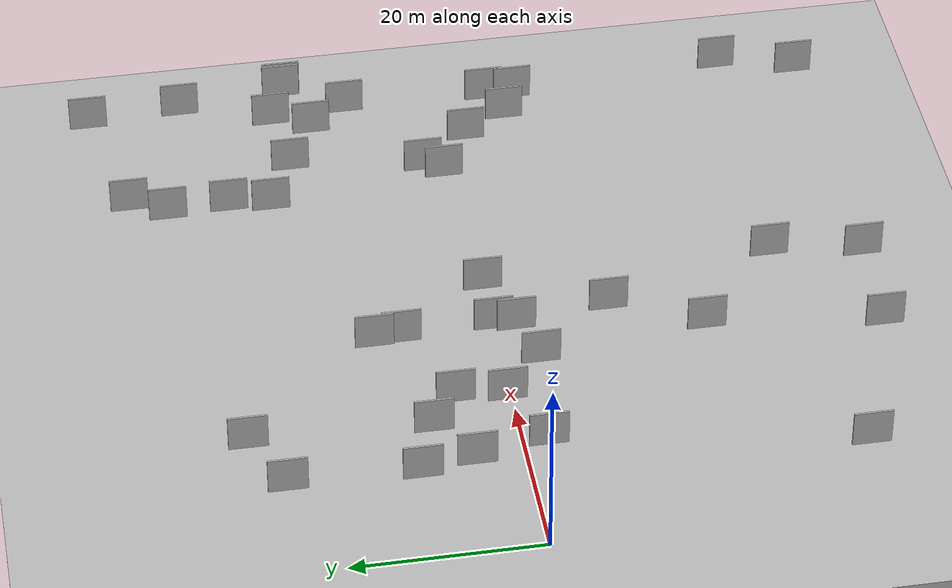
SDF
<?xml version="1.0" encoding="utf-8"?>

<sdf version="1.6">

   <world name="default">

      <gui fullscreen="0">

         <camera name="user_camera">

            <pose>-15 0 4.57585 0 0 0</pose>

            <view_controller>orbit</view_controller>

         </camera>

      </gui>

      <scene>

         <sky>

           <clouds>

             <speed>12</speed>

           </clouds>

         </sky>

         <ambient>0.4 0.4 0.4 1</ambient>

         <background>0.7 0.7 0.7 1</background>

         <shadows>1</shadows>

      </scene>

      <gravity>0 0 -9.8066</gravity>

      <magnetic_field>6e-06 2.3e-05 -4.2e-05</magnetic_field>

      <physics default="0" name="default_physics" type="ode">

         <ode>

            <solver>

               <type>quick</type>

               <iters>10</iters>

               <sor>1.0</sor>

               <use_dynamic_moi_rescaling>0</use_dynamic_moi_rescaling>

            </solver>

            <constraints>

               <cfm>0</cfm>

               <erp>0.2</erp>

               <contact_max_correcting_vel>100</contact_max_correcting_vel>

               <contact_surface_layer>0.001</contact_surface_layer>

            </constraints>

         </ode>

         <max_step_size>0.004</max_step_size>

         <real_time_factor>1</real_time_factor>

         <real_time_update_rate>250</real_time_update_rate>

      </physics>

      <light name="sun" type="directional">

         <cast_shadows>1</cast_shadows>

         <pose>0 0 10 0 0 0</pose>

         <diffuse>0.8 0.8 0.8 1</diffuse>

         <specular>0.2 0.2 0.2 1</specular>

         <attenuation>

            <range>1000</range>

            <constant>0.9</constant>

            <linear>0.01</linear>

            <quadratic>0.001</quadratic>

         </attenuation>

         <direction>-0.5 0.1 -0.9</direction>

      </light>

      <include>

         <name>ground_plane_1</name>

         <uri>model://HANNAS_ground_plane</uri>

         <pose>0 0 0  0 0 0</pose>

      </include>

      <include>

         <name>ground_plane_2</name>

         <uri>model://HANNAS_ground_plane</uri>

         <pose>100 0 0  0 0 0</pose>

      </include>

      <model name="HANNAS_wall_1">

         <static>1</static>

         <pose frame="">64.5799 -38.7247 5.0 0.000000 0.000000 1.570796</pose>

         <link name="link">

            <pose frame="">0 0 2.00 0 0 0</pose>

            <collision name="collision">

               <geometry>

                  <box>

                     <size>4.00 0.2 4.00</size>

                  </box>

               </geometry>

               <max_contacts>10</max_contacts>

               <surface>

                  <contact>

                     <ode/>

                  </contact>

                  <bounce/>

                  <friction>

                     <torsional>

                        <ode/>

                     </torsional>

                     <ode/>

                  </friction>

               </surface>

            </collision>

            <visual name="visual">

               <cast_shadows>0</cast_shadows>

               <geometry>

                  <box>

                     <size>4.00 0.2 4.00</size>

                  </box>

               </geometry>

               <material>

                  <script>

                     <uri>model://HANNAS_wall/materials/scripts</uri>

                     <uri>model://HANNAS_wall/materials/textures</uri>

                     <name>vrc/HANNAS_wall</name>

                  </script>

               </material>

            </visual>

            <self_collide>0</self_collide>

            <enable_wind>0</enable_wind>

            <kinematic>0</kinematic>

         </link>

      </model>

      <model name="HANNAS_wall_2">

         <static>1</static>

         <pose frame="">16.8913 6.6205 5.0 0.000000 0.000000 1.570796</pose>

         <link name="link">

            <pose frame="">0 0 2.00 0 0 0</pose>

            <collision name="collision">

               <geometry>

                  <box>

                     <size>4.00 0.2 4.00</size>

                  </box>

               </geometry>

               <max_contacts>10</max_contacts>

               <surface>

                  <contact>

                     <ode/>

                  </contact>

                  <bounce/>

                  <friction>

                     <torsional>

                        <ode/>

                     </torsional>

                     <ode/>

                  </friction>

               </surface>

            </collision>

            <visual name="visual">

               <cast_shadows>0</cast_shadows>

               <geometry>

                  <box>

                     <size>4.00 0.2 4.00</size>

                  </box>

               </geometry>

               <material>

                  <script>

                     <uri>model://HANNAS_wall/materials/scripts</uri>

                     <uri>model://HANNAS_wall/materials/textures</uri>

                     <name>vrc/HANNAS_wall</name>

                  </script>

               </material>

            </visual>

            <self_collide>0</self_collide>

            <enable_wind>0</enable_wind>

            <kinematic>0</kinematic>

         </link>

      </model>

      <model name="HANNAS_wall_3">

         <static>1</static>

         <pose frame="">52.6621 2.1144 5.0 0.000000 0.000000 1.570796</pose>

         <link name="link">

            <pose frame="">0 0 2.00 0 0 0</pose>

            <collision name="collision">

               <geometry>

                  <box>

                     <size>4.00 0.2 4.00</size>

                  </box>

               </geometry>

               <max_contacts>10</max_contacts>

               <surface>

                  <contact>

                     <ode/>

                  </contact>

                  <bounce/>

                  <friction>

                     <torsional>

                        <ode/>

                     </torsional>

                     <ode/>

                  </friction>

               </surface>

            </collision>

            <visual name="visual">

               <cast_shadows>0</cast_shadows>

               <geometry>

                  <box>

                     <size>4.00 0.2 4.00</size>

                  </box>

               </geometry>

               <material>

                  <script>

                     <uri>model://HANNAS_wall/materials/scripts</uri>

                     <uri>model://HANNAS_wall/materials/textures</uri>

                     <name>vrc/HANNAS_wall</name>

                  </script>

               </material>

            </visual>

            <self_collide>0</self_collide>

            <enable_wind>0</enable_wind>

            <kinematic>0</kinematic>

         </link>

      </model>

      <model name="HANNAS_wall_4">

         <static>1</static>

         <pose frame="">67.1704 38.8763 5.0 0.000000 0.000000 1.570796</pose>

         <link name="link">

            <pose frame="">0 0 2.00 0 0 0</pose>

            <collision name="collision">

               <geometry>

                  <box>

                     <size>4.00 0.2 4.00</size>

                  </box>

               </geometry>

               <max_contacts>10</max_contacts>

               <surface>

                  <contact>

                     <ode/>

                  </contact>

                  <bounce/>

                  <friction>

                     <torsional>

                        <ode/>

                     </torsional>

                     <ode/>

                  </friction>

               </surface>

            </collision>

            <visual name="visual">

               <cast_shadows>0</cast_shadows>

               <geometry>

                  <box>

                     <size>4.00 0.2 4.00</size>

                  </box>

               </geometry>

               <material>

                  <script>

                     <uri>model://HANNAS_wall/materials/scripts</uri>

                     <uri>model://HANNAS_wall/materials/textures</uri>

                     <name>vrc/HANNAS_wall</name>

                  </script>

               </material>

            </visual>

            <self_collide>0</self_collide>

            <enable_wind>0</enable_wind>

            <kinematic>0</kinematic>

         </link>

      </model>

      <model name="HANNAS_wall_5">

         <static>1</static>

         <pose frame="">56.4935 18.1802 5.0 0.000000 0.000000 1.570796</pose>

         <link name="link">

            <pose frame="">0 0 2.00 0 0 0</pose>

            <collision name="collision">

               <geometry>

                  <box>

                     <size>4.00 0.2 4.00</size>

                  </box>

               </geometry>

               <max_contacts>10</max_contacts>

               <surface>

                  <contact>

                     <ode/>

                  </contact>

                  <bounce/>

                  <friction>

                     <torsional>

                        <ode/>

                     </torsional>

                     <ode/>

                  </friction>

               </surface>

            </collision>

            <visual name="visual">

               <cast_shadows>0</cast_shadows>

               <geometry>

                  <box>

                     <size>4.00 0.2 4.00</size>

                  </box>

               </geometry>

               <material>

                  <script>

                     <uri>model://HANNAS_wall/materials/scripts</uri>

                     <uri>model://HANNAS_wall/materials/textures</uri>

                     <name>vrc/HANNAS_wall</name>

                  </script>

               </material>

            </visual>

            <self_collide>0</self_collide>

            <enable_wind>0</enable_wind>

            <kinematic>0</kinematic>

         </link>

      </model>

      <model name="HANNAS_wall_6">

         <static>1</static>

         <pose frame="">13.4779 27.9198 5.0 0.000000 0.000000 1.570796</pose>

         <link name="link">

            <pose frame="">0 0 2.00 0 0 0</pose>

            <collision name="collision">

               <geometry>

                  <box>

                     <size>4.00 0.2 4.00</size>

                  </box>

               </geometry>

               <max_contacts>10</max_contacts>

               <surface>

                  <contact>

                     <ode/>

                  </contact>

                  <bounce/>

                  <friction>

                     <torsional>

                        <ode/>

                     </torsional>

                     <ode/>

                  </friction>

               </surface>

            </collision>

            <visual name="visual">

               <cast_shadows>0</cast_shadows>

               <geometry>

                  <box>

                     <size>4.00 0.2 4.00</size>

                  </box>

               </geometry>

               <material>

                  <script>

                     <uri>model://HANNAS_wall/materials/scripts</uri>

                     <uri>model://HANNAS_wall/materials/textures</uri>

                     <name>vrc/HANNAS_wall</name>

                  </script>

               </material>

            </visual>

            <self_collide>0</self_collide>

            <enable_wind>0</enable_wind>

            <kinematic>0</kinematic>

         </link>

      </model>

      <model name="HANNAS_wall_7">

         <static>1</static>

         <pose frame="">6.4539 11.5407 5.0 0.000000 0.000000 1.570796</pose>

         <link name="link">

            <pose frame="">0 0 2.00 0 0 0</pose>

            <collision name="collision">

               <geometry>

                  <box>

                     <size>4.00 0.2 4.00</size>

                  </box>

               </geometry>

               <max_contacts>10</max_contacts>

               <surface>

                  <contact>

                     <ode/>

                  </contact>

                  <bounce/>

                  <friction>

                     <torsional>

                        <ode/>

                     </torsional>

                     <ode/>

                  </friction>

               </surface>

            </collision>

            <visual name="visual">

               <cast_shadows>0</cast_shadows>

               <geometry>

                  <box>

                     <size>4.00 0.2 4.00</size>

                  </box>

               </geometry>

               <material>

                  <script>

                     <uri>model://HANNAS_wall/materials/scripts</uri>

                     <uri>model://HANNAS_wall/materials/textures</uri>

                     <name>vrc/HANNAS_wall</name>

                  </script>

               </material>

            </visual>

            <self_collide>0</self_collide>

            <enable_wind>0</enable_wind>

            <kinematic>0</kinematic>

         </link>

      </model>

      <model name="HANNAS_wall_8">

         <static>1</static>

         <pose frame="">32.6061 -38.9345 5.0 0.000000 0.000000 1.570796</pose>

         <link name="link">

            <pose frame="">0 0 2.00 0 0 0</pose>

            <collision name="collision">

               <geometry>

                  <box>

                     <size>4.00 0.2 4.00</size>

                  </box>

               </geometry>

               <max_contacts>10</max_contacts>

               <surface>

                  <contact>

                     <ode/>

                  </contact>

                  <bounce/>

                  <friction>

                     <torsional>

                        <ode/>

                     </torsional>

                     <ode/>

                  </friction>

               </surface>

            </collision>

            <visual name="visual">

               <cast_shadows>0</cast_shadows>

               <geometry>

                  <box>

                     <size>4.00 0.2 4.00</size>

                  </box>

               </geometry>

               <material>

                  <script>

                     <uri>model://HANNAS_wall/materials/scripts</uri>

                     <uri>model://HANNAS_wall/materials/textures</uri>

                     <name>vrc/HANNAS_wall</name>

                  </script>

               </material>

            </visual>

            <self_collide>0</self_collide>

            <enable_wind>0</enable_wind>

            <kinematic>0</kinematic>

         </link>

      </model>

      <model name="HANNAS_wall_9">

         <static>1</static>

         <pose frame="">12.9186 9.4352 5.0 0.000000 0.000000 1.570796</pose>

         <link name="link">

            <pose frame="">0 0 2.00 0 0 0</pose>

            <collision name="collision">

               <geometry>

                  <box>

                     <size>4.00 0.2 4.00</size>

                  </box>

               </geometry>

               <max_contacts>10</max_contacts>

               <surface>

                  <contact>

                     <ode/>

                  </contact>

                  <bounce/>

                  <friction>

                     <torsional>

                        <ode/>

                     </torsional>

                     <ode/>

                  </friction>

               </surface>

            </collision>

            <visual name="visual">

               <cast_shadows>0</cast_shadows>

               <geometry>

                  <box>

                     <size>4.00 0.2 4.00</size>

                  </box>

               </geometry>

               <material>

                  <script>

                     <uri>model://HANNAS_wall/materials/scripts</uri>

                     <uri>model://HANNAS_wall/materials/textures</uri>

                     <name>vrc/HANNAS_wall</name>

                  </script>

               </material>

            </visual>

            <self_collide>0</self_collide>

            <enable_wind>0</enable_wind>

            <kinematic>0</kinematic>

         </link>

      </model>

      <model name="HANNAS_wall_10">

         <static>1</static>

         <pose frame="">65.5544 11.0873 5.0 0.000000 0.000000 1.570796</pose>

         <link name="link">

            <pose frame="">0 0 2.00 0 0 0</pose>

            <collision name="collision">

               <geometry>

                  <box>

                     <size>4.00 0.2 4.00</size>

                  </box>

               </geometry>

               <max_contacts>10</max_contacts>

               <surface>

                  <contact>

                     <ode/>

                  </contact>

                  <bounce/>

                  <friction>

                     <torsional>

                        <ode/>

                     </torsional>

                     <ode/>

                  </friction>

               </surface>

            </collision>

            <visual name="visual">

               <cast_shadows>0</cast_shadows>

               <geometry>

                  <box>

                     <size>4.00 0.2 4.00</size>

                  </box>

               </geometry>

               <material>

                  <script>

                     <uri>model://HANNAS_wall/materials/scripts</uri>

                     <uri>model://HANNAS_wall/materials/textures</uri>

                     <name>vrc/HANNAS_wall</name>

                  </script>

               </material>

            </visual>

            <self_collide>0</self_collide>

            <enable_wind>0</enable_wind>

            <kinematic>0</kinematic>

         </link>

      </model>

      <model name="HANNAS_wall_11">

         <static>1</static>

         <pose frame="">64.6356 19.2631 5.0 0.000000 0.000000 1.570796</pose>

         <link name="link">

            <pose frame="">0 0 2.00 0 0 0</pose>

            <collision name="collision">

               <geometry>

                  <box>

                     <size>4.00 0.2 4.00</size>

                  </box>

               </geometry>

               <max_contacts>10</max_contacts>

               <surface>

                  <contact>

                     <ode/>

                  </contact>

                  <bounce/>

                  <friction>

                     <torsional>

                        <ode/>

                     </torsional>

                     <ode/>

                  </friction>

               </surface>

            </collision>

            <visual name="visual">

               <cast_shadows>0</cast_shadows>

               <geometry>

                  <box>

                     <size>4.00 0.2 4.00</size>

                  </box>

               </geometry>

               <material>

                  <script>

                     <uri>model://HANNAS_wall/materials/scripts</uri>

                     <uri>model://HANNAS_wall/materials/textures</uri>

                     <name>vrc/HANNAS_wall</name>

                  </script>

               </material>

            </visual>

            <self_collide>0</self_collide>

            <enable_wind>0</enable_wind>

            <kinematic>0</kinematic>

         </link>

      </model>

      <model name="HANNAS_wall_12">

         <static>1</static>

         <pose frame="">28.3698 -11.0868 5.0 0.000000 0.000000 1.570796</pose>

         <link name="link">

            <pose frame="">0 0 2.00 0 0 0</pose>

            <collision name="collision">

               <geometry>

                  <box>

                     <size>4.00 0.2 4.00</size>

                  </box>

               </geometry>

               <max_contacts>10</max_contacts>

               <surface>

                  <contact>

                     <ode/>

                  </contact>

                  <bounce/>

                  <friction>

                     <torsional>

                        <ode/>

                     </torsional>

                     <ode/>

                  </friction>

               </surface>

            </collision>

            <visual name="visual">

               <cast_shadows>0</cast_shadows>

               <geometry>

                  <box>

                     <size>4.00 0.2 4.00</size>

                  </box>

               </geometry>

               <material>

                  <script>

                     <uri>model://HANNAS_wall/materials/scripts</uri>

                     <uri>model://HANNAS_wall/materials/textures</uri>

                     <name>vrc/HANNAS_wall</name>

                  </script>

               </material>

            </visual>

            <self_collide>0</self_collide>

            <enable_wind>0</enable_wind>

            <kinematic>0</kinematic>

         </link>

      </model>

      <model name="HANNAS_wall_13">

         <static>1</static>

         <pose frame="">65.0862 -7.3641 5.0 0.000000 0.000000 1.570796</pose>

         <link name="link">

            <pose frame="">0 0 2.00 0 0 0</pose>

            <collision name="collision">

               <geometry>

                  <box>

                     <size>4.00 0.2 4.00</size>

                  </box>

               </geometry>

               <max_contacts>10</max_contacts>

               <surface>

                  <contact>

                     <ode/>

                  </contact>

                  <bounce/>

                  <friction>

                     <torsional>

                        <ode/>

                     </torsional>

                     <ode/>

                  </friction>

               </surface>

            </collision>

            <visual name="visual">

               <cast_shadows>0</cast_shadows>

               <geometry>

                  <box>

                     <size>4.00 0.2 4.00</size>

                  </box>

               </geometry>

               <material>

                  <script>

                     <uri>model://HANNAS_wall/materials/scripts</uri>

                     <uri>model://HANNAS_wall/materials/textures</uri>

                     <name>vrc/HANNAS_wall</name>

                  </script>

               </material>

            </visual>

            <self_collide>0</self_collide>

            <enable_wind>0</enable_wind>

            <kinematic>0</kinematic>

         </link>

      </model>

      <model name="HANNAS_wall_14">

         <static>1</static>

         <pose frame="">4.0782 -32.9591 5.0 0.000000 0.000000 1.570796</pose>

         <link name="link">

            <pose frame="">0 0 2.00 0 0 0</pose>

            <collision name="collision">

               <geometry>

                  <box>

                     <size>4.00 0.2 4.00</size>

                  </box>

               </geometry>

               <max_contacts>10</max_contacts>

               <surface>

                  <contact>

                     <ode/>

                  </contact>

                  <bounce/>

                  <friction>

                     <torsional>

                        <ode/>

                     </torsional>

                     <ode/>

                  </friction>

               </surface>

            </collision>

            <visual name="visual">

               <cast_shadows>0</cast_shadows>

               <geometry>

                  <box>

                     <size>4.00 0.2 4.00</size>

                  </box>

               </geometry>

               <material>

                  <script>

                     <uri>model://HANNAS_wall/materials/scripts</uri>

                     <uri>model://HANNAS_wall/materials/textures</uri>

                     <name>vrc/HANNAS_wall</name>

                  </script>

               </material>

            </visual>

            <self_collide>0</self_collide>

            <enable_wind>0</enable_wind>

            <kinematic>0</kinematic>

         </link>

      </model>

      <model name="HANNAS_wall_15">

         <static>1</static>

         <pose frame="">50.2954 31.9529 5.0 0.000000 0.000000 1.570796</pose>

         <link name="link">

            <pose frame="">0 0 2.00 0 0 0</pose>

            <collision name="collision">

               <geometry>

                  <box>

                     <size>4.00 0.2 4.00</size>

                  </box>

               </geometry>

               <max_contacts>10</max_contacts>

               <surface>

                  <contact>

                     <ode/>

                  </contact>

                  <bounce/>

                  <friction>

                     <torsional>

                        <ode/>

                     </torsional>

                     <ode/>

                  </friction>

               </surface>

            </collision>

            <visual name="visual">

               <cast_shadows>0</cast_shadows>

               <geometry>

                  <box>

                     <size>4.00 0.2 4.00</size>

                  </box>

               </geometry>

               <material>

                  <script>

                     <uri>model://HANNAS_wall/materials/scripts</uri>

                     <uri>model://HANNAS_wall/materials/textures</uri>

                     <name>vrc/HANNAS_wall</name>

                  </script>

               </material>

            </visual>

            <self_collide>0</self_collide>

            <enable_wind>0</enable_wind>

            <kinematic>0</kinematic>

         </link>

      </model>

      <model name="HANNAS_wall_16">

         <static>1</static>

         <pose frame="">58.6051 -1.1972 5.0 0.000000 0.000000 1.570796</pose>

         <link name="link">

            <pose frame="">0 0 2.00 0 0 0</pose>

            <collision name="collision">

               <geometry>

                  <box>

                     <size>4.00 0.2 4.00</size>

                  </box>

               </geometry>

               <max_contacts>10</max_contacts>

               <surface>

                  <contact>

                     <ode/>

                  </contact>

                  <bounce/>

                  <friction>

                     <torsional>

                        <ode/>

                     </torsional>

                     <ode/>

                  </friction>

               </surface>

            </collision>

            <visual name="visual">

               <cast_shadows>0</cast_shadows>

               <geometry>

                  <box>

                     <size>4.00 0.2 4.00</size>

                  </box>

               </geometry>

               <material>

                  <script>

                     <uri>model://HANNAS_wall/materials/scripts</uri>

                     <uri>model://HANNAS_wall/materials/textures</uri>

                     <name>vrc/HANNAS_wall</name>

                  </script>

               </material>

            </visual>

            <self_collide>0</self_collide>

            <enable_wind>0</enable_wind>

            <kinematic>0</kinematic>

         </link>

      </model>

      <model name="HANNAS_wall_17">

         <static>1</static>

         <pose frame="">21.4174 -2.8317 5.0 0.000000 0.000000 1.570796</pose>

         <link name="link">

            <pose frame="">0 0 2.00 0 0 0</pose>

            <collision name="collision">

               <geometry>

                  <box>

                     <size>4.00 0.2 4.00</size>

                  </box>

               </geometry>

               <max_contacts>10</max_contacts>

               <surface>

                  <contact>

                     <ode/>

                  </contact>

                  <bounce/>

                  <friction>

                     <torsional>

                        <ode/>

                     </torsional>

                     <ode/>

                  </friction>

               </surface>

            </collision>

            <visual name="visual">

               <cast_shadows>0</cast_shadows>

               <geometry>

                  <box>

                     <size>4.00 0.2 4.00</size>

                  </box>

               </geometry>

               <material>

                  <script>

                     <uri>model://HANNAS_wall/materials/scripts</uri>

                     <uri>model://HANNAS_wall/materials/textures</uri>

                     <name>vrc/HANNAS_wall</name>

                  </script>

               </material>

            </visual>

            <self_collide>0</self_collide>

            <enable_wind>0</enable_wind>

            <kinematic>0</kinematic>

         </link>

      </model>

      <model name="HANNAS_wall_18">

         <static>1</static>

         <pose frame="">50.1022 21.0409 5.0 0.000000 0.000000 1.570796</pose>

         <link name="link">

            <pose frame="">0 0 2.00 0 0 0</pose>

            <collision name="collision">

               <geometry>

                  <box>

                     <size>4.00 0.2 4.00</size>

                  </box>

               </geometry>

               <max_contacts>10</max_contacts>

               <surface>

                  <contact>

                     <ode/>

                  </contact>

                  <bounce/>

                  <friction>

                     <torsional>

                        <ode/>

                     </torsional>

                     <ode/>

                  </friction>

               </surface>

            </collision>

            <visual name="visual">

               <cast_shadows>0</cast_shadows>

               <geometry>

                  <box>

                     <size>4.00 0.2 4.00</size>

                  </box>

               </geometry>

               <material>

                  <script>

                     <uri>model://HANNAS_wall/materials/scripts</uri>

                     <uri>model://HANNAS_wall/materials/textures</uri>

                     <name>vrc/HANNAS_wall</name>

                  </script>

               </material>

            </visual>

            <self_collide>0</self_collide>

            <enable_wind>0</enable_wind>

            <kinematic>0</kinematic>

         </link>

      </model>

      <model name="HANNAS_wall_19">

         <static>1</static>

         <pose frame="">69.4346 17.5841 5.0 0.000000 0.000000 1.570796</pose>

         <link name="link">

            <pose frame="">0 0 2.00 0 0 0</pose>

            <collision name="collision">

               <geometry>

                  <box>

                     <size>4.00 0.2 4.00</size>

                  </box>

               </geometry>

               <max_contacts>10</max_contacts>

               <surface>

                  <contact>

                     <ode/>

                  </contact>

                  <bounce/>

                  <friction>

                     <torsional>

                        <ode/>

                     </torsional>

                     <ode/>

                  </friction>

               </surface>

            </collision>

            <visual name="visual">

               <cast_shadows>0</cast_shadows>

               <geometry>

                  <box>

                     <size>4.00 0.2 4.00</size>

                  </box>

               </geometry>

               <material>

                  <script>

                     <uri>model://HANNAS_wall/materials/scripts</uri>

                     <uri>model://HANNAS_wall/materials/textures</uri>

                     <name>vrc/HANNAS_wall</name>

                  </script>

               </material>

            </visual>

            <self_collide>0</self_collide>

            <enable_wind>0</enable_wind>

            <kinematic>0</kinematic>

         </link>

      </model>

      <model name="HANNAS_wall_20">

         <static>1</static>

         <pose frame="">33.6173 1.1093 5.0 0.000000 0.000000 1.570796</pose>

         <link name="link">

            <pose frame="">0 0 2.00 0 0 0</pose>

            <collision name="collision">

               <geometry>

                  <box>

                     <size>4.00 0.2 4.00</size>

                  </box>

               </geometry>

               <max_contacts>10</max_contacts>

               <surface>

                  <contact>

                     <ode/>

                  </contact>

                  <bounce/>

                  <friction>

                     <torsional>

                        <ode/>

                     </torsional>

                     <ode/>

                  </friction>

               </surface>

            </collision>

            <visual name="visual">

               <cast_shadows>0</cast_shadows>

               <geometry>

                  <box>

                     <size>4.00 0.2 4.00</size>

                  </box>

               </geometry>

               <material>

                  <script>

                     <uri>model://HANNAS_wall/materials/scripts</uri>

                     <uri>model://HANNAS_wall/materials/textures</uri>

                     <name>vrc/HANNAS_wall</name>

                  </script>

               </material>

            </visual>

            <self_collide>0</self_collide>

            <enable_wind>0</enable_wind>

            <kinematic>0</kinematic>

         </link>

      </model>

      <model name="HANNAS_wall_21">

         <static>1</static>

         <pose frame="">26.7992 -1.2339 5.0 0.000000 0.000000 1.570796</pose>

         <link name="link">

            <pose frame="">0 0 2.00 0 0 0</pose>

            <collision name="collision">

               <geometry>

                  <box>

                     <size>4.00 0.2 4.00</size>

                  </box>

               </geometry>

               <max_contacts>10</max_contacts>

               <surface>

                  <contact>

                     <ode/>

                  </contact>

                  <bounce/>

                  <friction>

                     <torsional>

                        <ode/>

                     </torsional>

                     <ode/>

                  </friction>

               </surface>

            </collision>

            <visual name="visual">

               <cast_shadows>0</cast_shadows>

               <geometry>

                  <box>

                     <size>4.00 0.2 4.00</size>

                  </box>

               </geometry>

               <material>

                  <script>

                     <uri>model://HANNAS_wall/materials/scripts</uri>

                     <uri>model://HANNAS_wall/materials/textures</uri>

                     <name>vrc/HANNAS_wall</name>

                  </script>

               </material>

            </visual>

            <self_collide>0</self_collide>

            <enable_wind>0</enable_wind>

            <kinematic>0</kinematic>

         </link>

      </model>

      <model name="HANNAS_wall_22">

         <static>1</static>

         <pose frame="">50.6519 25.4522 5.0 0.000000 0.000000 1.570796</pose>

         <link name="link">

            <pose frame="">0 0 2.00 0 0 0</pose>

            <collision name="collision">

               <geometry>

                  <box>

                     <size>4.00 0.2 4.00</size>

                  </box>

               </geometry>

               <max_contacts>10</max_contacts>

               <surface>

                  <contact>

                     <ode/>

                  </contact>

                  <bounce/>

                  <friction>

                     <torsional>

                        <ode/>

                     </torsional>

                     <ode/>

                  </friction>

               </surface>

            </collision>

            <visual name="visual">

               <cast_shadows>0</cast_shadows>

               <geometry>

                  <box>

                     <size>4.00 0.2 4.00</size>

                  </box>

               </geometry>

               <material>

                  <script>

                     <uri>model://HANNAS_wall/materials/scripts</uri>

                     <uri>model://HANNAS_wall/materials/textures</uri>

                     <name>vrc/HANNAS_wall</name>

                  </script>

               </material>

            </visual>

            <self_collide>0</self_collide>

            <enable_wind>0</enable_wind>

            <kinematic>0</kinematic>

         </link>

      </model>

      <model name="HANNAS_wall_23">

         <static>1</static>

         <pose frame="">52.4099 35.8447 5.0 0.000000 0.000000 1.570796</pose>

         <link name="link">

            <pose frame="">0 0 2.00 0 0 0</pose>

            <collision name="collision">

               <geometry>

                  <box>

                     <size>4.00 0.2 4.00</size>

                  </box>

               </geometry>

               <max_contacts>10</max_contacts>

               <surface>

                  <contact>

                     <ode/>

                  </contact>

                  <bounce/>

                  <friction>

                     <torsional>

                        <ode/>

                     </torsional>

                     <ode/>

                  </friction>

               </surface>

            </collision>

            <visual name="visual">

               <cast_shadows>0</cast_shadows>

               <geometry>

                  <box>

                     <size>4.00 0.2 4.00</size>

                  </box>

               </geometry>

               <material>

                  <script>

                     <uri>model://HANNAS_wall/materials/scripts</uri>

                     <uri>model://HANNAS_wall/materials/textures</uri>

                     <name>vrc/HANNAS_wall</name>

                  </script>

               </material>

            </visual>

            <self_collide>0</self_collide>

            <enable_wind>0</enable_wind>

            <kinematic>0</kinematic>

         </link>

      </model>

      <model name="HANNAS_wall_24">

         <static>1</static>

         <pose frame="">26.5206 13.4300 5.0 0.000000 0.000000 1.570796</pose>

         <link name="link">

            <pose frame="">0 0 2.00 0 0 0</pose>

            <collision name="collision">

               <geometry>

                  <box>

                     <size>4.00 0.2 4.00</size>

                  </box>

               </geometry>

               <max_contacts>10</max_contacts>

               <surface>

                  <contact>

                     <ode/>

                  </contact>

                  <bounce/>

                  <friction>

                     <torsional>

                        <ode/>

                     </torsional>

                     <ode/>

                  </friction>

               </surface>

            </collision>

            <visual name="visual">

               <cast_shadows>0</cast_shadows>

               <geometry>

                  <box>

                     <size>4.00 0.2 4.00</size>

                  </box>

               </geometry>

               <material>

                  <script>

                     <uri>model://HANNAS_wall/materials/scripts</uri>

                     <uri>model://HANNAS_wall/materials/textures</uri>

                     <name>vrc/HANNAS_wall</name>

                  </script>

               </material>

            </visual>

            <self_collide>0</self_collide>

            <enable_wind>0</enable_wind>

            <kinematic>0</kinematic>

         </link>

      </model>

      <model name="HANNAS_wall_25">

         <static>1</static>

         <pose frame="">62.5072 15.1461 5.0 0.000000 0.000000 1.570796</pose>

         <link name="link">

            <pose frame="">0 0 2.00 0 0 0</pose>

            <collision name="collision">

               <geometry>

                  <box>

                     <size>4.00 0.2 4.00</size>

                  </box>

               </geometry>

               <max_contacts>10</max_contacts>

               <surface>

                  <contact>

                     <ode/>

                  </contact>

                  <bounce/>

                  <friction>

                     <torsional>

                        <ode/>

                     </torsional>

                     <ode/>

                  </friction>

               </surface>

            </collision>

            <visual name="visual">

               <cast_shadows>0</cast_shadows>

               <geometry>

                  <box>

                     <size>4.00 0.2 4.00</size>

                  </box>

               </geometry>

               <material>

                  <script>

                     <uri>model://HANNAS_wall/materials/scripts</uri>

                     <uri>model://HANNAS_wall/materials/textures</uri>

                     <name>vrc/HANNAS_wall</name>

                  </script>

               </material>

            </visual>

            <self_collide>0</self_collide>

            <enable_wind>0</enable_wind>

            <kinematic>0</kinematic>

         </link>

      </model>

      <model name="HANNAS_wall_26">

         <static>1</static>

         <pose frame="">54.1058 4.1856 5.0 0.000000 0.000000 1.570796</pose>

         <link name="link">

            <pose frame="">0 0 2.00 0 0 0</pose>

            <collision name="collision">

               <geometry>

                  <box>

                     <size>4.00 0.2 4.00</size>

                  </box>

               </geometry>

               <max_contacts>10</max_contacts>

               <surface>

                  <contact>

                     <ode/>

                  </contact>

                  <bounce/>

                  <friction>

                     <torsional>

                        <ode/>

                     </torsional>

                     <ode/>

                  </friction>

               </surface>

            </collision>

            <visual name="visual">

               <cast_shadows>0</cast_shadows>

               <geometry>

                  <box>

                     <size>4.00 0.2 4.00</size>

                  </box>

               </geometry>

               <material>

                  <script>

                     <uri>model://HANNAS_wall/materials/scripts</uri>

                     <uri>model://HANNAS_wall/materials/textures</uri>

                     <name>vrc/HANNAS_wall</name>

                  </script>

               </material>

            </visual>

            <self_collide>0</self_collide>

            <enable_wind>0</enable_wind>

            <kinematic>0</kinematic>

         </link>

      </model>

      <model name="HANNAS_wall_27">

         <static>1</static>

         <pose frame="">7.5233 5.9950 5.0 0.000000 0.000000 1.570796</pose>

         <link name="link">

            <pose frame="">0 0 2.00 0 0 0</pose>

            <collision name="collision">

               <geometry>

                  <box>

                     <size>4.00 0.2 4.00</size>

                  </box>

               </geometry>

               <max_contacts>10</max_contacts>

               <surface>

                  <contact>

                     <ode/>

                  </contact>

                  <bounce/>

                  <friction>

                     <torsional>

                        <ode/>

                     </torsional>

                     <ode/>

                  </friction>

               </surface>

            </collision>

            <visual name="visual">

               <cast_shadows>0</cast_shadows>

               <geometry>

                  <box>

                     <size>4.00 0.2 4.00</size>

                  </box>

               </geometry>

               <material>

                  <script>

                     <uri>model://HANNAS_wall/materials/scripts</uri>

                     <uri>model://HANNAS_wall/materials/textures</uri>

                     <name>vrc/HANNAS_wall</name>

                  </script>

               </material>

            </visual>

            <self_collide>0</self_collide>

            <enable_wind>0</enable_wind>

            <kinematic>0</kinematic>

         </link>

      </model>

      <model name="HANNAS_wall_28">

         <static>1</static>

         <pose frame="">16.3592 1.4555 5.0 0.000000 0.000000 1.570796</pose>

         <link name="link">

            <pose frame="">0 0 2.00 0 0 0</pose>

            <collision name="collision">

               <geometry>

                  <box>

                     <size>4.00 0.2 4.00</size>

                  </box>

               </geometry>

               <max_contacts>10</max_contacts>

               <surface>

                  <contact>

                     <ode/>

                  </contact>

                  <bounce/>

                  <friction>

                     <torsional>

                        <ode/>

                     </torsional>

                     <ode/>

                  </friction>

               </surface>

            </collision>

            <visual name="visual">

               <cast_shadows>0</cast_shadows>

               <geometry>

                  <box>

                     <size>4.00 0.2 4.00</size>

                  </box>

               </geometry>

               <material>

                  <script>

                     <uri>model://HANNAS_wall/materials/scripts</uri>

                     <uri>model://HANNAS_wall/materials/textures</uri>

                     <name>vrc/HANNAS_wall</name>

                  </script>

               </material>

            </visual>

            <self_collide>0</self_collide>

            <enable_wind>0</enable_wind>

            <kinematic>0</kinematic>

         </link>

      </model>

      <model name="HANNAS_wall_29">

         <static>1</static>

         <pose frame="">66.7471 -30.5385 5.0 0.000000 0.000000 1.570796</pose>

         <link name="link">

            <pose frame="">0 0 2.00 0 0 0</pose>

            <collision name="collision">

               <geometry>

                  <box>

                     <size>4.00 0.2 4.00</size>

                  </box>

               </geometry>

               <max_contacts>10</max_contacts>

               <surface>

                  <contact>

                     <ode/>

                  </contact>

                  <bounce/>

                  <friction>

                     <torsional>

                        <ode/>

                     </torsional>

                     <ode/>

                  </friction>

               </surface>

            </collision>

            <visual name="visual">

               <cast_shadows>0</cast_shadows>

               <geometry>

                  <box>

                     <size>4.00 0.2 4.00</size>

                  </box>

               </geometry>

               <material>

                  <script>

                     <uri>model://HANNAS_wall/materials/scripts</uri>

                     <uri>model://HANNAS_wall/materials/textures</uri>

                     <name>vrc/HANNAS_wall</name>

                  </script>

               </material>

            </visual>

            <self_collide>0</self_collide>

            <enable_wind>0</enable_wind>

            <kinematic>0</kinematic>

         </link>

      </model>

      <model name="HANNAS_wall_30">

         <static>1</static>

         <pose frame="">67.8969 28.8501 5.0 0.000000 0.000000 1.570796</pose>

         <link name="link">

            <pose frame="">0 0 2.00 0 0 0</pose>

            <collision name="collision">

               <geometry>

                  <box>

                     <size>4.00 0.2 4.00</size>

                  </box>

               </geometry>

               <max_contacts>10</max_contacts>

               <surface>

                  <contact>

                     <ode/>

                  </contact>

                  <bounce/>

                  <friction>

                     <torsional>

                        <ode/>

                     </torsional>

                     <ode/>

                  </friction>

               </surface>

            </collision>

            <visual name="visual">

               <cast_shadows>0</cast_shadows>

               <geometry>

                  <box>

                     <size>4.00 0.2 4.00</size>

                  </box>

               </geometry>

               <material>

                  <script>

                     <uri>model://HANNAS_wall/materials/scripts</uri>

                     <uri>model://HANNAS_wall/materials/textures</uri>

                     <name>vrc/HANNAS_wall</name>

                  </script>

               </material>

            </visual>

            <self_collide>0</self_collide>

            <enable_wind>0</enable_wind>

            <kinematic>0</kinematic>

         </link>

      </model>

      <model name="HANNAS_wall_31">

         <static>1</static>

         <pose frame="">6.7768 24.8142 5.0 0.000000 0.000000 1.570796</pose>

         <link name="link">

            <pose frame="">0 0 2.00 0 0 0</pose>

            <collision name="collision">

               <geometry>

                  <box>

                     <size>4.00 0.2 4.00</size>

                  </box>

               </geometry>

               <max_contacts>10</max_contacts>

               <surface>

                  <contact>

                     <ode/>

                  </contact>

                  <bounce/>

                  <friction>

                     <torsional>

                        <ode/>

                     </torsional>

                     <ode/>

                  </friction>

               </surface>

            </collision>

            <visual name="visual">

               <cast_shadows>0</cast_shadows>

               <geometry>

                  <box>

                     <size>4.00 0.2 4.00</size>

                  </box>

               </geometry>

               <material>

                  <script>

                     <uri>model://HANNAS_wall/materials/scripts</uri>

                     <uri>model://HANNAS_wall/materials/textures</uri>

                     <name>vrc/HANNAS_wall</name>

                  </script>

               </material>

            </visual>

            <self_collide>0</self_collide>

            <enable_wind>0</enable_wind>

            <kinematic>0</kinematic>

         </link>

      </model>

      <model name="HANNAS_wall_32">

         <static>1</static>

         <pose frame="">21.3775 -38.5453 5.0 0.000000 0.000000 1.570796</pose>

         <link name="link">

            <pose frame="">0 0 2.00 0 0 0</pose>

            <collision name="collision">

               <geometry>

                  <box>

                     <size>4.00 0.2 4.00</size>

                  </box>

               </geometry>

               <max_contacts>10</max_contacts>

               <surface>

                  <contact>

                     <ode/>

                  </contact>

                  <bounce/>

                  <friction>

                     <torsional>

                        <ode/>

                     </torsional>

                     <ode/>

                  </friction>

               </surface>

            </collision>

            <visual name="visual">

               <cast_shadows>0</cast_shadows>

               <geometry>

                  <box>

                     <size>4.00 0.2 4.00</size>

                  </box>

               </geometry>

               <material>

                  <script>

                     <uri>model://HANNAS_wall/materials/scripts</uri>

                     <uri>model://HANNAS_wall/materials/textures</uri>

                     <name>vrc/HANNAS_wall</name>

                  </script>

               </material>

            </visual>

            <self_collide>0</self_collide>

            <enable_wind>0</enable_wind>

            <kinematic>0</kinematic>

         </link>

      </model>

      <model name="HANNAS_wall_33">

         <static>1</static>

         <pose frame="">26.7471 10.6051 5.0 0.000000 0.000000 1.570796</pose>

         <link name="link">

            <pose frame="">0 0 2.00 0 0 0</pose>

            <collision name="collision">

               <geometry>

                  <box>

                     <size>4.00 0.2 4.00</size>

                  </box>

               </geometry>

               <max_contacts>10</max_contacts>

               <surface>

                  <contact>

                     <ode/>

                  </contact>

                  <bounce/>

                  <friction>

                     <torsional>

                        <ode/>

                     </torsional>

                     <ode/>

                  </friction>

               </surface>

            </collision>

            <visual name="visual">

               <cast_shadows>0</cast_shadows>

               <geometry>

                  <box>

                     <size>4.00 0.2 4.00</size>

                  </box>

               </geometry>

               <material>

                  <script>

                     <uri>model://HANNAS_wall/materials/scripts</uri>

                     <uri>model://HANNAS_wall/materials/textures</uri>

                     <name>vrc/HANNAS_wall</name>

                  </script>

               </material>

            </visual>

            <self_collide>0</self_collide>

            <enable_wind>0</enable_wind>

            <kinematic>0</kinematic>

         </link>

      </model>

      <model name="HANNAS_wall_34">

         <static>1</static>

         <pose frame="">27.2508 1.0609 5.0 0.000000 0.000000 1.570796</pose>

         <link name="link">

            <pose frame="">0 0 2.00 0 0 0</pose>

            <collision name="collision">

               <geometry>

                  <box>

                     <size>4.00 0.2 4.00</size>

                  </box>

               </geometry>

               <max_contacts>10</max_contacts>

               <surface>

                  <contact>

                     <ode/>

                  </contact>

                  <bounce/>

                  <friction>

                     <torsional>

                        <ode/>

                     </torsional>

                     <ode/>

                  </friction>

               </surface>

            </collision>

            <visual name="visual">

               <cast_shadows>0</cast_shadows>

               <geometry>

                  <box>

                     <size>4.00 0.2 4.00</size>

                  </box>

               </geometry>

               <material>

                  <script>

                     <uri>model://HANNAS_wall/materials/scripts</uri>

                     <uri>model://HANNAS_wall/materials/textures</uri>

                     <name>vrc/HANNAS_wall</name>

                  </script>

               </material>

            </visual>

            <self_collide>0</self_collide>

            <enable_wind>0</enable_wind>

            <kinematic>0</kinematic>

         </link>

      </model>

      <model name="HANNAS_wall_35">

         <static>1</static>

         <pose frame="">69.9105 17.4865 5.0 0.000000 0.000000 1.570796</pose>

         <link name="link">

            <pose frame="">0 0 2.00 0 0 0</pose>

            <collision name="collision">

               <geometry>

                  <box>

                     <size>4.00 0.2 4.00</size>

                  </box>

               </geometry>

               <max_contacts>10</max_contacts>

               <surface>

                  <contact>

                     <ode/>

                  </contact>

                  <bounce/>

                  <friction>

                     <torsional>

                        <ode/>

                     </torsional>

                     <ode/>

                  </friction>

               </surface>

            </collision>

            <visual name="visual">

               <cast_shadows>0</cast_shadows>

               <geometry>

                  <box>

                     <size>4.00 0.2 4.00</size>

                  </box>

               </geometry>

               <material>

                  <script>

                     <uri>model://HANNAS_wall/materials/scripts</uri>

                     <uri>model://HANNAS_wall/materials/textures</uri>

                     <name>vrc/HANNAS_wall</name>

                  </script>

               </material>

            </visual>

            <self_collide>0</self_collide>

            <enable_wind>0</enable_wind>

            <kinematic>0</kinematic>

         </link>

      </model>

      <model name="HANNAS_wall_36">

         <static>1</static>

         <pose frame="">61.6179 -5.8778 5.0 0.000000 0.000000 1.570796</pose>

         <link name="link">

            <pose frame="">0 0 2.00 0 0 0</pose>

            <collision name="collision">

               <geometry>

                  <box>

                     <size>4.00 0.2 4.00</size>

                  </box>

               </geometry>

               <max_contacts>10</max_contacts>

               <surface>

                  <contact>

                     <ode/>

                  </contact>

                  <bounce/>

                  <friction>

                     <torsional>

                        <ode/>

                     </torsional>

                     <ode/>

                  </friction>

               </surface>

            </collision>

            <visual name="visual">

               <cast_shadows>0</cast_shadows>

               <geometry>

                  <box>

                     <size>4.00 0.2 4.00</size>

                  </box>

               </geometry>

               <material>

                  <script>

                     <uri>model://HANNAS_wall/materials/scripts</uri>

                     <uri>model://HANNAS_wall/materials/textures</uri>

                     <name>vrc/HANNAS_wall</name>

                  </script>

               </material>

            </visual>

            <self_collide>0</self_collide>

            <enable_wind>0</enable_wind>

            <kinematic>0</kinematic>

         </link>

      </model>

      <model name="HANNAS_wall_37">

         <static>1</static>

         <pose frame="">34.1276 -29.2702 5.0 0.000000 0.000000 1.570796</pose>

         <link name="link">

            <pose frame="">0 0 2.00 0 0 0</pose>

            <collision name="collision">

               <geometry>

                  <box>

                     <size>4.00 0.2 4.00</size>

                  </box>

               </geometry>

               <max_contacts>10</max_contacts>

               <surface>

                  <contact>

                     <ode/>

                  </contact>

                  <bounce/>

                  <friction>

                     <torsional>

                        <ode/>

                     </torsional>

                     <ode/>

                  </friction>

               </surface>

            </collision>

            <visual name="visual">

               <cast_shadows>0</cast_shadows>

               <geometry>

                  <box>

                     <size>4.00 0.2 4.00</size>

                  </box>

               </geometry>

               <material>

                  <script>

                     <uri>model://HANNAS_wall/materials/scripts</uri>

                     <uri>model://HANNAS_wall/materials/textures</uri>

                     <name>vrc/HANNAS_wall</name>

                  </script>

               </material>

            </visual>

            <self_collide>0</self_collide>

            <enable_wind>0</enable_wind>

            <kinematic>0</kinematic>

         </link>

      </model>

      <model name="HANNAS_wall_38">

         <static>1</static>

         <pose frame="">9.1471 -1.4597 5.0 0.000000 0.000000 1.570796</pose>

         <link name="link">

            <pose frame="">0 0 2.00 0 0 0</pose>

            <collision name="collision">

               <geometry>

                  <box>

                     <size>4.00 0.2 4.00</size>

                  </box>

               </geometry>

               <max_contacts>10</max_contacts>

               <surface>

                  <contact>

                     <ode/>

                  </contact>

                  <bounce/>

                  <friction>

                     <torsional>

                        <ode/>

                     </torsional>

                     <ode/>

                  </friction>

               </surface>

            </collision>

            <visual name="visual">

               <cast_shadows>0</cast_shadows>

               <geometry>

                  <box>

                     <size>4.00 0.2 4.00</size>

                  </box>

               </geometry>

               <material>

                  <script>

                     <uri>model://HANNAS_wall/materials/scripts</uri>

                     <uri>model://HANNAS_wall/materials/textures</uri>

                     <name>vrc/HANNAS_wall</name>

                  </script>

               </material>

            </visual>

            <self_collide>0</self_collide>

            <enable_wind>0</enable_wind>

            <kinematic>0</kinematic>

         </link>

      </model>

      <model name="HANNAS_wall_39">

         <static>1</static>

         <pose frame="">65.3295 -4.2313 5.0 0.000000 0.000000 1.570796</pose>

         <link name="link">

            <pose frame="">0 0 2.00 0 0 0</pose>

            <collision name="collision">

               <geometry>

                  <box>

                     <size>4.00 0.2 4.00</size>

                  </box>

               </geometry>

               <max_contacts>10</max_contacts>

               <surface>

                  <contact>

                     <ode/>

                  </contact>

                  <bounce/>

                  <friction>

                     <torsional>

                        <ode/>

                     </torsional>

                     <ode/>

                  </friction>

               </surface>

            </collision>

            <visual name="visual">

               <cast_shadows>0</cast_shadows>

               <geometry>

                  <box>

                     <size>4.00 0.2 4.00</size>

                  </box>

               </geometry>

               <material>

                  <script>

                     <uri>model://HANNAS_wall/materials/scripts</uri>

                     <uri>model://HANNAS_wall/materials/textures</uri>

                     <name>vrc/HANNAS_wall</name>

                  </script>

               </material>

            </visual>

            <self_collide>0</self_collide>

            <enable_wind>0</enable_wind>

            <kinematic>0</kinematic>

         </link>

      </model>

      <model name="HANNAS_wall_40">

         <static>1</static>

         <pose frame="">23.8195 -20.4642 5.0 0.000000 0.000000 1.570796</pose>

         <link name="link">

            <pose frame="">0 0 2.00 0 0 0</pose>

            <collision name="collision">

               <geometry>

                  <box>

                     <size>4.00 0.2 4.00</size>

                  </box>

               </geometry>

               <max_contacts>10</max_contacts>

               <surface>

                  <contact>

                     <ode/>

                  </contact>

                  <bounce/>

                  <friction>

                     <torsional>

                        <ode/>

                     </torsional>

                     <ode/>

                  </friction>

               </surface>

            </collision>

            <visual name="visual">

               <cast_shadows>0</cast_shadows>

               <geometry>

                  <box>

                     <size>4.00 0.2 4.00</size>

                  </box>

               </geometry>

               <material>

                  <script>

                     <uri>model://HANNAS_wall/materials/scripts</uri>

                     <uri>model://HANNAS_wall/materials/textures</uri>

                     <name>vrc/HANNAS_wall</name>

                  </script>

               </material>

            </visual>

            <self_collide>0</self_collide>

            <enable_wind>0</enable_wind>

            <kinematic>0</kinematic>

         </link>

      </model>

   </world>

</sdf>
